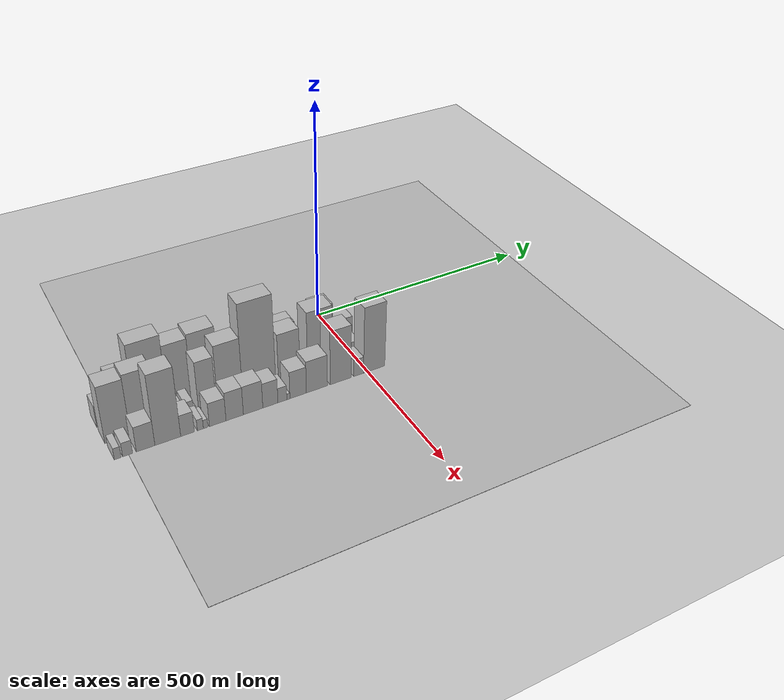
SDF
<sdf version="1.6">
 <world name="default">
  <include><name>ground_plane_1</name><uri>model://HANNAS_ground_plane</uri></include>
  <include>
   <name>ground_plane_2</name>
   <uri>model://HANNAS_ground_plane</uri>
   <pose>100 0 0  0 0 0</pose>
  </include>
  <model name="building_1">
   <static>1</static>
   <pose>100.0000 -515.1915 0 0.000000 0.000000 0.000000</pose>
   <link name="link">
    <pose>0 0 25.50 0 0 0</pose>
    <collision name="collision"><geometry><box><size>40.0000 27.6170 51.0000</size></box></geometry></collision>
    <visual name="visual">
     <cast_shadows>0</cast_shadows>
     <geometry><box><size>40.0000 27.6170 51.0000</size></box></geometry>
     <material>
      <script>
       <uri>model://HANNAS_wall/materials/scripts</uri>
       <uri>model://HANNAS_wall/materials/textures</uri>
       <name>vrc/HANNAS_wall</name>
      </script>
     </material>
    </visual>
   </link>
  </model>
  <model name="building_2">
   <static>1</static>
   <pose>100.0000 -474.7647 0 0.000000 0.000000 0.000000</pose>
   <link name="link">
    <pose>0 0 52.50 0 0 0</pose>
    <collision name="collision"><geometry><box><size>40.0000 41.2366 105.0000</size></box></geometry></collision>
    <visual name="visual">
     <cast_shadows>0</cast_shadows>
     <geometry><box><size>40.0000 41.2366 105.0000</size></box></geometry>
     <material>
      <script>
       <uri>model://HANNAS_wall/materials/scripts</uri>
       <uri>model://HANNAS_wall/materials/textures</uri>
       <name>vrc/HANNAS_wall</name>
      </script>
     </material>
    </visual>
   </link>
  </model>
  <model name="building_3">
   <static>1</static>
   <pose>100.0000 -421.1329 0 0.000000 0.000000 0.000000</pose>
   <link name="link">
    <pose>0 0 84.00 0 0 0</pose>
    <collision name="collision"><geometry><box><size>40.0000 66.0271 168.0000</size></box></geometry></collision>
    <visual name="visual">
     <cast_shadows>0</cast_shadows>
     <geometry><box><size>40.0000 66.0271 168.0000</size></box></geometry>
     <material>
      <script>
       <uri>model://HANNAS_wall/materials/scripts</uri>
       <uri>model://HANNAS_wall/materials/textures</uri>
       <name>vrc/HANNAS_wall</name>
      </script>
     </material>
    </visual>
   </link>
  </model>
  <model name="building_4">
   <static>1</static>
   <pose>100.0000 -362.8965 0 0.000000 0.000000 0.000000</pose>
   <link name="link">
    <pose>0 0 70.50 0 0 0</pose>
    <collision name="collision"><geometry><box><size>40.0000 50.4457 141.0000</size></box></geometry></collision>
    <visual name="visual">
     <cast_shadows>0</cast_shadows>
     <geometry><box><size>40.0000 50.4457 141.0000</size></box></geometry>
     <material>
      <script>
       <uri>model://HANNAS_wall/materials/scripts</uri>
       <uri>model://HANNAS_wall/materials/textures</uri>
       <name>vrc/HANNAS_wall</name>
      </script>
     </material>
    </visual>
   </link>
  </model>
  <model name="building_5">
   <static>1</static>
   <pose>100.0000 -309.4191 0 0.000000 0.000000 0.000000</pose>
   <link name="link">
    <pose>0 0 75.00 0 0 0</pose>
    <collision name="collision"><geometry><box><size>40.0000 56.5090 150.0000</size></box></geometry></collision>
    <visual name="visual">
     <cast_shadows>0</cast_shadows>
     <geometry><box><size>40.0000 56.5090 150.0000</size></box></geometry>
     <material>
      <script>
       <uri>model://HANNAS_wall/materials/scripts</uri>
       <uri>model://HANNAS_wall/materials/textures</uri>
       <name>vrc/HANNAS_wall</name>
      </script>
     </material>
    </visual>
   </link>
  </model>
  <model name="building_6">
   <static>1</static>
   <pose>100.0000 -263.7066 0 0.000000 0.000000 0.000000</pose>
   <link name="link">
    <pose>0 0 27.00 0 0 0</pose>
    <collision name="collision"><geometry><box><size>40.0000 28.9161 54.0000</size></box></geometry></collision>
    <visual name="visual">
     <cast_shadows>0</cast_shadows>
     <geometry><box><size>40.0000 28.9161 54.0000</size></box></geometry>
     <material>
      <script>
       <uri>model://HANNAS_wall/materials/scripts</uri>
       <uri>model://HANNAS_wall/materials/textures</uri>
       <name>vrc/HANNAS_wall</name>
      </script>
     </material>
    </visual>
   </link>
  </model>
  <model name="building_7">
   <static>1</static>
   <pose>100.0000 -233.9224 0 0.000000 0.000000 0.000000</pose>
   <link name="link">
    <pose>0 0 30.00 0 0 0</pose>
    <collision name="collision"><geometry><box><size>40.0000 30.6522 60.0000</size></box></geometry></collision>
    <visual name="visual">
     <cast_shadows>0</cast_shadows>
     <geometry><box><size>40.0000 30.6522 60.0000</size></box></geometry>
     <material>
      <script>
       <uri>model://HANNAS_wall/materials/scripts</uri>
       <uri>model://HANNAS_wall/materials/textures</uri>
       <name>vrc/HANNAS_wall</name>
      </script>
     </material>
    </visual>
   </link>
  </model>
  <model name="building_8">
   <static>1</static>
   <pose>100.0000 -212.8381 0 0.000000 0.000000 0.000000</pose>
   <link name="link">
    <pose>0 0 12.00 0 0 0</pose>
    <collision name="collision"><geometry><box><size>40.0000 11.5164 24.0000</size></box></geometry></collision>
    <visual name="visual">
     <cast_shadows>0</cast_shadows>
     <geometry><box><size>40.0000 11.5164 24.0000</size></box></geometry>
     <material>
      <script>
       <uri>model://HANNAS_wall/materials/scripts</uri>
       <uri>model://HANNAS_wall/materials/textures</uri>
       <name>vrc/HANNAS_wall</name>
      </script>
     </material>
    </visual>
   </link>
  </model>
  <model name="building_9">
   <static>1</static>
   <pose>100.0000 -184.1226 0 0.000000 0.000000 0.000000</pose>
   <link name="link">
    <pose>0 0 45.00 0 0 0</pose>
    <collision name="collision"><geometry><box><size>40.0000 45.9146 90.0000</size></box></geometry></collision>
    <visual name="visual">
     <cast_shadows>0</cast_shadows>
     <geometry><box><size>40.0000 45.9146 90.0000</size></box></geometry>
     <material>
      <script>
       <uri>model://HANNAS_wall/materials/scripts</uri>
       <uri>model://HANNAS_wall/materials/textures</uri>
       <name>vrc/HANNAS_wall</name>
      </script>
     </material>
    </visual>
   </link>
  </model>
  <model name="building_10">
   <static>1</static>
   <pose>100.0000 -132.3108 0 0.000000 0.000000 0.000000</pose>
   <link name="link">
    <pose>0 0 51.00 0 0 0</pose>
    <collision name="collision"><geometry><box><size>40.0000 37.7090 102.0000</size></box></geometry></collision>
    <visual name="visual">
     <cast_shadows>0</cast_shadows>
     <geometry><box><size>40.0000 37.7090 102.0000</size></box></geometry>
     <material>
      <script>
       <uri>model://HANNAS_wall/materials/scripts</uri>
       <uri>model://HANNAS_wall/materials/textures</uri>
       <name>vrc/HANNAS_wall</name>
      </script>
     </material>
    </visual>
   </link>
  </model>
  <model name="building_11">
   <static>1</static>
   <pose>100.0000 -101.5084 0 0.000000 0.000000 0.000000</pose>
   <link name="link">
    <pose>0 0 21.00 0 0 0</pose>
    <collision name="collision"><geometry><box><size>40.0000 23.8957 42.0000</size></box></geometry></collision>
    <visual name="visual">
     <cast_shadows>0</cast_shadows>
     <geometry><box><size>40.0000 23.8957 42.0000</size></box></geometry>
     <material>
      <script>
       <uri>model://HANNAS_wall/materials/scripts</uri>
       <uri>model://HANNAS_wall/materials/textures</uri>
       <name>vrc/HANNAS_wall</name>
      </script>
     </material>
    </visual>
   </link>
  </model>
  <model name="building_12">
   <static>1</static>
   <pose>100.0000 -78.9548 0 0.000000 0.000000 0.000000</pose>
   <link name="link">
    <pose>0 0 19.50 0 0 0</pose>
    <collision name="collision"><geometry><box><size>40.0000 21.2116 39.0000</size></box></geometry></collision>
    <visual name="visual">
     <cast_shadows>0</cast_shadows>
     <geometry><box><size>40.0000 21.2116 39.0000</size></box></geometry>
     <material>
      <script>
       <uri>model://HANNAS_wall/materials/scripts</uri>
       <uri>model://HANNAS_wall/materials/textures</uri>
       <name>vrc/HANNAS_wall</name>
      </script>
     </material>
    </visual>
   </link>
  </model>
  <model name="building_13">
   <static>1</static>
   <pose>100.0000 -48.1221 0 0.000000 0.000000 0.000000</pose>
   <link name="link">
    <pose>0 0 58.50 0 0 0</pose>
    <collision name="collision"><geometry><box><size>40.0000 40.4538 117.0000</size></box></geometry></collision>
    <visual name="visual">
     <cast_shadows>0</cast_shadows>
     <geometry><box><size>40.0000 40.4538 117.0000</size></box></geometry>
     <material>
      <script>
       <uri>model://HANNAS_wall/materials/scripts</uri>
       <uri>model://HANNAS_wall/materials/textures</uri>
       <name>vrc/HANNAS_wall</name>
      </script>
     </material>
    </visual>
   </link>
  </model>
  <model name="building_14">
   <static>1</static>
   <pose>100.0000 -2.3943 0 0.000000 0.000000 0.000000</pose>
   <link name="link">
    <pose>0 0 34.50 0 0 0</pose>
    <collision name="collision"><geometry><box><size>40.0000 41.0018 69.0000</size></box></geometry></collision>
    <visual name="visual">
     <cast_shadows>0</cast_shadows>
     <geometry><box><size>40.0000 41.0018 69.0000</size></box></geometry>
     <material>
      <script>
       <uri>model://HANNAS_wall/materials/scripts</uri>
       <uri>model://HANNAS_wall/materials/textures</uri>
       <name>vrc/HANNAS_wall</name>
      </script>
     </material>
    </visual>
   </link>
  </model>
  <model name="building_31">
   <static>1</static>
   <pose>149.0000 -504.5442 0 0.000000 0.000000 0.000000</pose>
   <link name="link">
    <pose>0 0 67.50 0 0 0</pose>
    <collision name="collision"><geometry><box><size>40.0000 48.9116 135.0000</size></box></geometry></collision>
    <visual name="visual">
     <cast_shadows>0</cast_shadows>
     <geometry><box><size>40.0000 48.9116 135.0000</size></box></geometry>
     <material>
      <script>
       <uri>model://HANNAS_wall/materials/scripts</uri>
       <uri>model://HANNAS_wall/materials/textures</uri>
       <name>vrc/HANNAS_wall</name>
      </script>
     </material>
    </visual>
   </link>
  </model>
  <model name="building_32">
   <static>1</static>
   <pose>149.0000 -453.0408 0 0.000000 0.000000 0.000000</pose>
   <link name="link">
    <pose>0 0 72.00 0 0 0</pose>
    <collision name="collision"><geometry><box><size>40.0000 54.0952 144.0000</size></box></geometry></collision>
    <visual name="visual">
     <cast_shadows>0</cast_shadows>
     <geometry><box><size>40.0000 54.0952 144.0000</size></box></geometry>
     <material>
      <script>
       <uri>model://HANNAS_wall/materials/scripts</uri>
       <uri>model://HANNAS_wall/materials/textures</uri>
       <name>vrc/HANNAS_wall</name>
      </script>
     </material>
    </visual>
   </link>
  </model>
  <model name="building_33">
   <static>1</static>
   <pose>149.0000 -405.5895 0 0.000000 0.000000 0.000000</pose>
   <link name="link">
    <pose>0 0 37.50 0 0 0</pose>
    <collision name="collision"><geometry><box><size>40.0000 40.8075 75.0000</size></box></geometry></collision>
    <visual name="visual">
     <cast_shadows>0</cast_shadows>
     <geometry><box><size>40.0000 40.8075 75.0000</size></box></geometry>
     <material>
      <script>
       <uri>model://HANNAS_wall/materials/scripts</uri>
       <uri>model://HANNAS_wall/materials/textures</uri>
       <name>vrc/HANNAS_wall</name>
      </script>
     </material>
    </visual>
   </link>
  </model>
  <model name="building_34">
   <static>1</static>
   <pose>149.0000 -375.9434 0 0.000000 0.000000 0.000000</pose>
   <link name="link">
    <pose>0 0 10.50 0 0 0</pose>
    <collision name="collision"><geometry><box><size>40.0000 10.4847 21.0000</size></box></geometry></collision>
    <visual name="visual">
     <cast_shadows>0</cast_shadows>
     <geometry><box><size>40.0000 10.4847 21.0000</size></box></geometry>
     <material>
      <script>
       <uri>model://HANNAS_wall/materials/scripts</uri>
       <uri>model://HANNAS_wall/materials/textures</uri>
       <name>vrc/HANNAS_wall</name>
      </script>
     </material>
    </visual>
   </link>
  </model>
  <model name="building_35">
   <static>1</static>
   <pose>149.0000 -362.0849 0 0.000000 0.000000 0.000000</pose>
   <link name="link">
    <pose>0 0 16.50 0 0 0</pose>
    <collision name="collision"><geometry><box><size>40.0000 17.2323 33.0000</size></box></geometry></collision>
    <visual name="visual">
     <cast_shadows>0</cast_shadows>
     <geometry><box><size>40.0000 17.2323 33.0000</size></box></geometry>
     <material>
      <script>
       <uri>model://HANNAS_wall/materials/scripts</uri>
       <uri>model://HANNAS_wall/materials/textures</uri>
       <name>vrc/HANNAS_wall</name>
      </script>
     </material>
    </visual>
   </link>
  </model>
  <model name="building_36">
   <static>1</static>
   <pose>149.0000 -325.2871 0 0.000000 0.000000 0.000000</pose>
   <link name="link">
    <pose>0 0 60.00 0 0 0</pose>
    <collision name="collision"><geometry><box><size>40.0000 36.3631 120.0000</size></box></geometry></collision>
    <visual name="visual">
     <cast_shadows>0</cast_shadows>
     <geometry><box><size>40.0000 36.3631 120.0000</size></box></geometry>
     <material>
      <script>
       <uri>model://HANNAS_wall/materials/scripts</uri>
       <uri>model://HANNAS_wall/materials/textures</uri>
       <name>vrc/HANNAS_wall</name>
      </script>
     </material>
    </visual>
   </link>
  </model>
  <model name="building_37">
   <static>1</static>
   <pose>149.0000 -277.8152 0 0.000000 0.000000 0.000000</pose>
   <link name="link">
    <pose>0 0 72.00 0 0 0</pose>
    <collision name="collision"><geometry><box><size>40.0000 52.5809 144.0000</size></box></geometry></collision>
    <visual name="visual">
     <cast_shadows>0</cast_shadows>
     <geometry><box><size>40.0000 52.5809 144.0000</size></box></geometry>
     <material>
      <script>
       <uri>model://HANNAS_wall/materials/scripts</uri>
       <uri>model://HANNAS_wall/materials/textures</uri>
       <name>vrc/HANNAS_wall</name>
      </script>
     </material>
    </visual>
   </link>
  </model>
  <model name="building_38">
   <static>1</static>
   <pose>149.0000 -216.0042 0 0.000000 0.000000 0.000000</pose>
   <link name="link">
    <pose>0 0 111.00 0 0 0</pose>
    <collision name="collision"><geometry><box><size>40.0000 71.0410 222.0000</size></box></geometry></collision>
    <visual name="visual">
     <cast_shadows>0</cast_shadows>
     <geometry><box><size>40.0000 71.0410 222.0000</size></box></geometry>
     <material>
      <script>
       <uri>model://HANNAS_wall/materials/scripts</uri>
       <uri>model://HANNAS_wall/materials/textures</uri>
       <name>vrc/HANNAS_wall</name>
      </script>
     </material>
    </visual>
   </link>
  </model>
  <model name="building_39">
   <static>1</static>
   <pose>149.0000 -177.4119 0 0.000000 0.000000 0.000000</pose>
   <link name="link">
    <pose>0 0 7.50 0 0 0</pose>
    <collision name="collision"><geometry><box><size>40.0000 6.1436 15.0000</size></box></geometry></collision>
    <visual name="visual">
     <cast_shadows>0</cast_shadows>
     <geometry><box><size>40.0000 6.1436 15.0000</size></box></geometry>
     <material>
      <script>
       <uri>model://HANNAS_wall/materials/scripts</uri>
       <uri>model://HANNAS_wall/materials/textures</uri>
       <name>vrc/HANNAS_wall</name>
      </script>
     </material>
    </visual>
   </link>
  </model>
  <model name="building_40">
   <static>1</static>
   <pose>149.0000 -150.7998 0 0.000000 0.000000 0.000000</pose>
   <link name="link">
    <pose>0 0 61.50 0 0 0</pose>
    <collision name="collision"><geometry><box><size>40.0000 47.0806 123.0000</size></box></geometry></collision>
    <visual name="visual">
     <cast_shadows>0</cast_shadows>
     <geometry><box><size>40.0000 47.0806 123.0000</size></box></geometry>
     <material>
      <script>
       <uri>model://HANNAS_wall/materials/scripts</uri>
       <uri>model://HANNAS_wall/materials/textures</uri>
       <name>vrc/HANNAS_wall</name>
      </script>
     </material>
    </visual>
   </link>
  </model>
  <model name="building_41">
   <static>1</static>
   <pose>149.0000 -114.3229 0 0.000000 0.000000 0.000000</pose>
   <link name="link">
    <pose>0 0 9.00 0 0 0</pose>
    <collision name="collision"><geometry><box><size>40.0000 7.8732 18.0000</size></box></geometry></collision>
    <visual name="visual">
     <cast_shadows>0</cast_shadows>
     <geometry><box><size>40.0000 7.8732 18.0000</size></box></geometry>
     <material>
      <script>
       <uri>model://HANNAS_wall/materials/scripts</uri>
       <uri>model://HANNAS_wall/materials/textures</uri>
       <name>vrc/HANNAS_wall</name>
      </script>
     </material>
    </visual>
   </link>
  </model>
  <model name="building_42">
   <static>1</static>
   <pose>149.0000 -82.2751 0 0.000000 0.000000 0.000000</pose>
   <link name="link">
    <pose>0 0 76.50 0 0 0</pose>
    <collision name="collision"><geometry><box><size>40.0000 56.2226 153.0000</size></box></geometry></collision>
    <visual name="visual">
     <cast_shadows>0</cast_shadows>
     <geometry><box><size>40.0000 56.2226 153.0000</size></box></geometry>
     <material>
      <script>
       <uri>model://HANNAS_wall/materials/scripts</uri>
       <uri>model://HANNAS_wall/materials/textures</uri>
       <name>vrc/HANNAS_wall</name>
      </script>
     </material>
    </visual>
   </link>
  </model>
  <model name="building_43">
   <static>1</static>
   <pose>149.0000 -34.6621 0 0.000000 0.000000 0.000000</pose>
   <link name="link">
    <pose>0 0 37.50 0 0 0</pose>
    <collision name="collision"><geometry><box><size>40.0000 39.0034 75.0000</size></box></geometry></collision>
    <visual name="visual">
     <cast_shadows>0</cast_shadows>
     <geometry><box><size>40.0000 39.0034 75.0000</size></box></geometry>
     <material>
      <script>
       <uri>model://HANNAS_wall/materials/scripts</uri>
       <uri>model://HANNAS_wall/materials/textures</uri>
       <name>vrc/HANNAS_wall</name>
      </script>
     </material>
    </visual>
   </link>
  </model>
  <model name="building_44">
   <static>1</static>
   <pose>149.0000 -3.6967 0 0.000000 0.000000 0.000000</pose>
   <link name="link">
    <pose>0 0 22.50 0 0 0</pose>
    <collision name="collision"><geometry><box><size>40.0000 22.9274 45.0000</size></box></geometry></collision>
    <visual name="visual">
     <cast_shadows>0</cast_shadows>
     <geometry><box><size>40.0000 22.9274 45.0000</size></box></geometry>
     <material>
      <script>
       <uri>model://HANNAS_wall/materials/scripts</uri>
       <uri>model://HANNAS_wall/materials/textures</uri>
       <name>vrc/HANNAS_wall</name>
      </script>
     </material>
    </visual>
   </link>
  </model>
  <model name="building_63">
   <static>1</static>
   <pose>198.0000 -520.6369 0 0.000000 0.000000 0.000000</pose>
   <link name="link">
    <pose>0 0 13.50 0 0 0</pose>
    <collision name="collision"><geometry><box><size>40.0000 12.7261 27.0000</size></box></geometry></collision>
    <visual name="visual">
     <cast_shadows>0</cast_shadows>
     <geometry><box><size>40.0000 12.7261 27.0000</size></box></geometry>
     <material>
      <script>
       <uri>model://HANNAS_wall/materials/scripts</uri>
       <uri>model://HANNAS_wall/materials/textures</uri>
       <name>vrc/HANNAS_wall</name>
      </script>
     </material>
    </visual>
   </link>
  </model>
  <model name="building_64">
   <static>1</static>
   <pose>198.0000 -501.7607 0 0.000000 0.000000 0.000000</pose>
   <link name="link">
    <pose>0 0 16.50 0 0 0</pose>
    <collision name="collision"><geometry><box><size>40.0000 19.0263 33.0000</size></box></geometry></collision>
    <visual name="visual">
     <cast_shadows>0</cast_shadows>
     <geometry><box><size>40.0000 19.0263 33.0000</size></box></geometry>
     <material>
      <script>
       <uri>model://HANNAS_wall/materials/scripts</uri>
       <uri>model://HANNAS_wall/materials/textures</uri>
       <name>vrc/HANNAS_wall</name>
      </script>
     </material>
    </visual>
   </link>
  </model>
  <model name="building_65">
   <static>1</static>
   <pose>198.0000 -467.3677 0 0.000000 0.000000 0.000000</pose>
   <link name="link">
    <pose>0 0 30.00 0 0 0</pose>
    <collision name="collision"><geometry><box><size>40.0000 35.7596 60.0000</size></box></geometry></collision>
    <visual name="visual">
     <cast_shadows>0</cast_shadows>
     <geometry><box><size>40.0000 35.7596 60.0000</size></box></geometry>
     <material>
      <script>
       <uri>model://HANNAS_wall/materials/scripts</uri>
       <uri>model://HANNAS_wall/materials/textures</uri>
       <name>vrc/HANNAS_wall</name>
      </script>
     </material>
    </visual>
   </link>
  </model>
  <model name="building_66">
   <static>1</static>
   <pose>198.0000 -424.2273 0 0.000000 0.000000 0.000000</pose>
   <link name="link">
    <pose>0 0 84.00 0 0 0</pose>
    <collision name="collision"><geometry><box><size>40.0000 50.5212 168.0000</size></box></geometry></collision>
    <visual name="visual">
     <cast_shadows>0</cast_shadows>
     <geometry><box><size>40.0000 50.5212 168.0000</size></box></geometry>
     <material>
      <script>
       <uri>model://HANNAS_wall/materials/scripts</uri>
       <uri>model://HANNAS_wall/materials/textures</uri>
       <name>vrc/HANNAS_wall</name>
      </script>
     </material>
    </visual>
   </link>
  </model>
  <model name="building_67">
   <static>1</static>
   <pose>198.0000 -385.4415 0 0.000000 0.000000 0.000000</pose>
   <link name="link">
    <pose>0 0 25.50 0 0 0</pose>
    <collision name="collision"><geometry><box><size>40.0000 27.0504 51.0000</size></box></geometry></collision>
    <visual name="visual">
     <cast_shadows>0</cast_shadows>
     <geometry><box><size>40.0000 27.0504 51.0000</size></box></geometry>
     <material>
      <script>
       <uri>model://HANNAS_wall/materials/scripts</uri>
       <uri>model://HANNAS_wall/materials/textures</uri>
       <name>vrc/HANNAS_wall</name>
      </script>
     </material>
    </visual>
   </link>
  </model>
  <model name="building_68">
   <static>1</static>
   <pose>198.0000 -359.8696 0 0.000000 0.000000 0.000000</pose>
   <link name="link">
    <pose>0 0 13.50 0 0 0</pose>
    <collision name="collision"><geometry><box><size>40.0000 12.0935 27.0000</size></box></geometry></collision>
    <visual name="visual">
     <cast_shadows>0</cast_shadows>
     <geometry><box><size>40.0000 12.0935 27.0000</size></box></geometry>
     <material>
      <script>
       <uri>model://HANNAS_wall/materials/scripts</uri>
       <uri>model://HANNAS_wall/materials/textures</uri>
       <name>vrc/HANNAS_wall</name>
      </script>
     </material>
    </visual>
   </link>
  </model>
  <model name="building_69">
   <static>1</static>
   <pose>198.0000 -349.2496 0 0.000000 0.000000 0.000000</pose>
   <link name="link">
    <pose>0 0 10.50 0 0 0</pose>
    <collision name="collision"><geometry><box><size>40.0000 9.1466 21.0000</size></box></geometry></collision>
    <visual name="visual">
     <cast_shadows>0</cast_shadows>
     <geometry><box><size>40.0000 9.1466 21.0000</size></box></geometry>
     <material>
      <script>
       <uri>model://HANNAS_wall/materials/scripts</uri>
       <uri>model://HANNAS_wall/materials/textures</uri>
       <name>vrc/HANNAS_wall</name>
      </script>
     </material>
    </visual>
   </link>
  </model>
  <model name="building_70">
   <static>1</static>
   <pose>198.0000 -324.7396 0 0.000000 0.000000 0.000000</pose>
   <link name="link">
    <pose>0 0 28.50 0 0 0</pose>
    <collision name="collision"><geometry><box><size>40.0000 33.8733 57.0000</size></box></geometry></collision>
    <visual name="visual">
     <cast_shadows>0</cast_shadows>
     <geometry><box><size>40.0000 33.8733 57.0000</size></box></geometry>
     <material>
      <script>
       <uri>model://HANNAS_wall/materials/scripts</uri>
       <uri>model://HANNAS_wall/materials/textures</uri>
       <name>vrc/HANNAS_wall</name>
      </script>
     </material>
    </visual>
   </link>
  </model>
  <model name="building_71">
   <static>1</static>
   <pose>198.0000 -289.8852 0 0.000000 0.000000 0.000000</pose>
   <link name="link">
    <pose>0 0 34.50 0 0 0</pose>
    <collision name="collision"><geometry><box><size>40.0000 35.8355 69.0000</size></box></geometry></collision>
    <visual name="visual">
     <cast_shadows>0</cast_shadows>
     <geometry><box><size>40.0000 35.8355 69.0000</size></box></geometry>
     <material>
      <script>
       <uri>model://HANNAS_wall/materials/scripts</uri>
       <uri>model://HANNAS_wall/materials/textures</uri>
       <name>vrc/HANNAS_wall</name>
      </script>
     </material>
    </visual>
   </link>
  </model>
  <model name="building_72">
   <static>1</static>
   <pose>198.0000 -251.6432 0 0.000000 0.000000 0.000000</pose>
   <link name="link">
    <pose>0 0 34.50 0 0 0</pose>
    <collision name="collision"><geometry><box><size>40.0000 40.6484 69.0000</size></box></geometry></collision>
    <visual name="visual">
     <cast_shadows>0</cast_shadows>
     <geometry><box><size>40.0000 40.6484 69.0000</size></box></geometry>
     <material>
      <script>
       <uri>model://HANNAS_wall/materials/scripts</uri>
       <uri>model://HANNAS_wall/materials/textures</uri>
       <name>vrc/HANNAS_wall</name>
      </script>
     </material>
    </visual>
   </link>
  </model>
  <model name="building_73">
   <static>1</static>
   <pose>198.0000 -215.2844 0 0.000000 0.000000 0.000000</pose>
   <link name="link">
    <pose>0 0 30.00 0 0 0</pose>
    <collision name="collision"><geometry><box><size>40.0000 32.0693 60.0000</size></box></geometry></collision>
    <visual name="visual">
     <cast_shadows>0</cast_shadows>
     <geometry><box><size>40.0000 32.0693 60.0000</size></box></geometry>
     <material>
      <script>
       <uri>model://HANNAS_wall/materials/scripts</uri>
       <uri>model://HANNAS_wall/materials/textures</uri>
       <name>vrc/HANNAS_wall</name>
      </script>
     </material>
    </visual>
   </link>
  </model>
  <model name="building_74">
   <static>1</static>
   <pose>198.0000 -189.6942 0 0.000000 0.000000 0.000000</pose>
   <link name="link">
    <pose>0 0 18.00 0 0 0</pose>
    <collision name="collision"><geometry><box><size>40.0000 19.1111 36.0000</size></box></geometry></collision>
    <visual name="visual">
     <cast_shadows>0</cast_shadows>
     <geometry><box><size>40.0000 19.1111 36.0000</size></box></geometry>
     <material>
      <script>
       <uri>model://HANNAS_wall/materials/scripts</uri>
       <uri>model://HANNAS_wall/materials/textures</uri>
       <name>vrc/HANNAS_wall</name>
      </script>
     </material>
    </visual>
   </link>
  </model>
  <model name="building_75">
   <static>1</static>
   <pose>198.0000 -176.8130 0 0.000000 0.000000 0.000000</pose>
   <link name="link">
    <pose>0 0 7.50 0 0 0</pose>
    <collision name="collision"><geometry><box><size>40.0000 6.6513 15.0000</size></box></geometry></collision>
    <visual name="visual">
     <cast_shadows>0</cast_shadows>
     <geometry><box><size>40.0000 6.6513 15.0000</size></box></geometry>
     <material>
      <script>
       <uri>model://HANNAS_wall/materials/scripts</uri>
       <uri>model://HANNAS_wall/materials/textures</uri>
       <name>vrc/HANNAS_wall</name>
      </script>
     </material>
    </visual>
   </link>
  </model>
  <model name="building_76">
   <static>1</static>
   <pose>198.0000 -155.6028 0 0.000000 0.000000 0.000000</pose>
   <link name="link">
    <pose>0 0 33.00 0 0 0</pose>
    <collision name="collision"><geometry><box><size>40.0000 35.7691 66.0000</size></box></geometry></collision>
    <visual name="visual">
     <cast_shadows>0</cast_shadows>
     <geometry><box><size>40.0000 35.7691 66.0000</size></box></geometry>
     <material>
      <script>
       <uri>model://HANNAS_wall/materials/scripts</uri>
       <uri>model://HANNAS_wall/materials/textures</uri>
       <name>vrc/HANNAS_wall</name>
      </script>
     </material>
    </visual>
   </link>
  </model>
  <model name="building_77">
   <static>1</static>
   <pose>198.0000 -114.4940 0 0.000000 0.000000 0.000000</pose>
   <link name="link">
    <pose>0 0 39.00 0 0 0</pose>
    <collision name="collision"><geometry><box><size>40.0000 46.4484 78.0000</size></box></geometry></collision>
    <visual name="visual">
     <cast_shadows>0</cast_shadows>
     <geometry><box><size>40.0000 46.4484 78.0000</size></box></geometry>
     <material>
      <script>
       <uri>model://HANNAS_wall/materials/scripts</uri>
       <uri>model://HANNAS_wall/materials/textures</uri>
       <name>vrc/HANNAS_wall</name>
      </script>
     </material>
    </visual>
   </link>
  </model>
  <model name="building_78">
   <static>1</static>
   <pose>198.0000 -61.6347 0 0.000000 0.000000 0.000000</pose>
   <link name="link">
    <pose>0 0 66.00 0 0 0</pose>
    <collision name="collision"><geometry><box><size>40.0000 47.2702 132.0000</size></box></geometry></collision>
    <visual name="visual">
     <cast_shadows>0</cast_shadows>
     <geometry><box><size>40.0000 47.2702 132.0000</size></box></geometry>
     <material>
      <script>
       <uri>model://HANNAS_wall/materials/scripts</uri>
       <uri>model://HANNAS_wall/materials/textures</uri>
       <name>vrc/HANNAS_wall</name>
      </script>
     </material>
    </visual>
   </link>
  </model>
  <model name="building_79">
   <static>1</static>
   <pose>198.0000 -20.8276 0 0.000000 0.000000 0.000000</pose>
   <link name="link">
    <pose>0 0 21.00 0 0 0</pose>
    <collision name="collision"><geometry><box><size>40.0000 22.3441 42.0000</size></box></geometry></collision>
    <visual name="visual">
     <cast_shadows>0</cast_shadows>
     <geometry><box><size>40.0000 22.3441 42.0000</size></box></geometry>
     <material>
      <script>
       <uri>model://HANNAS_wall/materials/scripts</uri>
       <uri>model://HANNAS_wall/materials/textures</uri>
       <name>vrc/HANNAS_wall</name>
      </script>
     </material>
    </visual>
   </link>
  </model>
  <model name="building_80">
   <static>1</static>
   <pose>198.0000 14.8404 0 0.000000 0.000000 0.000000</pose>
   <link name="link">
    <pose>0 0 81.00 0 0 0</pose>
    <collision name="collision"><geometry><box><size>40.0000 48.9918 162.0000</size></box></geometry></collision>
    <visual name="visual">
     <cast_shadows>0</cast_shadows>
     <geometry><box><size>40.0000 48.9918 162.0000</size></box></geometry>
     <material>
      <script>
       <uri>model://HANNAS_wall/materials/scripts</uri>
       <uri>model://HANNAS_wall/materials/textures</uri>
       <name>vrc/HANNAS_wall</name>
      </script>
     </material>
    </visual>
   </link>
  </model>
 </world>
</sdf>
